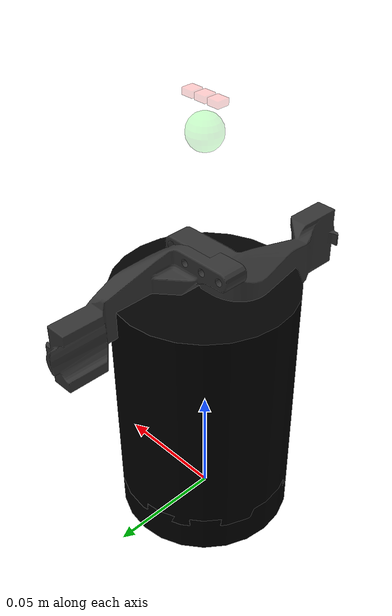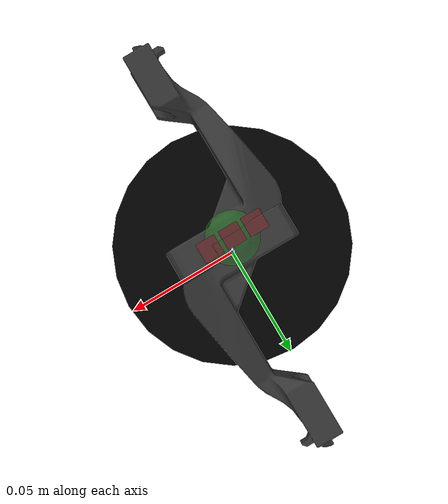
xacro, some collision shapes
<?xml version="1.0"?>

<robot xmlns:xacro="http://wiki.ros.org/xacro" name="robotiq_hande">
  <xacro:arg name="name" default="RobotiqGripperHandeHardwareInterface"/>
  <xacro:arg name="tf_prefix" default="" />
  <xacro:arg name="use_fake_hardware" default="false" />
  <xacro:arg name="com_port" default="/dev/ttyACM0" />
  <xacro:arg name="finger_xacro" default="fngr_v6" />
  <xacro:arg name="marker_opacity" default="0.1" />

  <xacro:property name="finger_type_prop" value="$(arg finger_xacro)" />

  <xacro:include filename="$(find dextivr_hande_description)/urdf/dextivr_hande.xacro"/>

  <link name="world"/>

  <xacro:dextivr_hande
    name="$(arg name)"
    tf_prefix="$(arg tf_prefix)"
    parent="world"
    use_fake_hardware="$(arg use_fake_hardware)"
    com_port="$(arg com_port)"
    finger_xacro="$(arg finger_xacro)"
    marker_opacity="$(arg marker_opacity)">
    <origin xyz="0 0 0" rpy="0 0 0"/>
  </xacro:dextivr_hande>

</robot>

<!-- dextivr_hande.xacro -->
<robot xmlns:xacro="http://wiki.ros.org/xacro">

  <xacro:macro name="dextivr_hande" params="
    name:=RobotiqGripperHandeHardwareInterface
    tf_prefix
    parent
    *origin
    sim_ignition:=false
    use_fake_hardware:=false
    fake_sensor_commands:=false
    com_port:=/dev/ttyUSB0
    marker_opacity:=0.5
    finger_xacro:=fngr_v6
    custom_xacro_include_path:=''
    custom_xacro_frames_include_path:=''
    add_grasp_push_frames:=true
    generate_ros2_control_tag:=true">

  <!-- if ignition or gazebo - need to use absolute paths instead of relative, applies locally -->
  <xacro:property name="force_abs_paths" value="${sim_ignition}" />

  <xacro:include filename="$(find robotiq_hande_description)/urdf/robotiq_hande.xacro"/>
  <xacro:include filename="$(find robotiq_hande_description)/urdf/gen_mesh.xacro"/>

  <xacro:robotiq_hande
    name="${name}"
    tf_prefix="${tf_prefix}"
    parent="${parent}"
    sim_ignition="${sim_ignition}"
    use_fake_hardware="${use_fake_hardware}"
    com_port="${com_port}"
    generate_ros2_control_tag="${generate_ros2_control_tag}">
    <xacro:insert_block name="origin"/>
  </xacro:robotiq_hande>

  <!--If statements for the various types of gripper fingers-->
  <xacro:if value="${finger_xacro == 'fngr_original'}">
    <xacro:include filename="$(find robotiq_hande_description)/urdf/hande_fingers.xacro"/>
    <xacro:if value="${add_grasp_push_frames}">
      <xacro:include filename="$(find robotiq_hande_description)/urdf/grasp_push_frames.xacro"/>
     </xacro:if>
  </xacro:if>

  <xacro:if value="${finger_xacro == 'fngr_nail_v2'}">
    <xacro:include filename="$(find dextivr_hande_description)/urdf/hande_fingers_fngr_nail_v2.xacro"/>
    <xacro:if value="${add_grasp_push_frames}">
      <xacro:include filename="$(find dextivr_hande_description)/urdf/fngr_nail_v2_grasp_push_frames.xacro"/>
    </xacro:if>
  </xacro:if>

  <xacro:if value="${finger_xacro == 'fngr_v2_m'}">
    <xacro:include filename="$(find dextivr_hande_description)/urdf/hande_fingers_v2_m.xacro"/>
    <xacro:if value="${add_grasp_push_frames}">
      <xacro:include filename="$(find dextivr_hande_description)/urdf/fngr_v2_m_grasp_push_frames.xacro"/>
    </xacro:if>
  </xacro:if>

  <xacro:if value="${finger_xacro == 'fngr_v6'}">
    <xacro:include filename="$(find dextivr_hande_description)/urdf/hande_fingers_v6.xacro"/>
    <xacro:if value="${add_grasp_push_frames}">
      <xacro:include filename="$(find dextivr_hande_description)/urdf/fngr_v2_m_grasp_push_frames.xacro"/>
    </xacro:if>
  </xacro:if>

  <xacro:if value="${finger_xacro == 'fngr_v7'}">
    <xacro:include filename="$(find dextivr_hande_description)/urdf/hande_fingers_v7.xacro"/>
    <xacro:if value="${add_grasp_push_frames}">
      <xacro:include filename="$(find dextivr_hande_description)/urdf/fngr_v2_m_grasp_push_frames.xacro"/>
    </xacro:if>
  </xacro:if>

  <xacro:if value="${finger_xacro == 'custom'}">
    <!--
      Validate that `custom_xacro_include_path` is non-empty.
      Note that these "errors" are actually invalid syntax, but they still give the user useful signal for debugging.
    -->
    <xacro:if value="${custom_xacro_include_path == ''}">
      <xacro:property name="validated_custom_xacro_include_path"
                      value="${raise(ValueError('ERROR: custom_xacro_include_path argument must be specified if using custom fingers!'))}" />
    </xacro:if>
    <xacro:unless value="${custom_xacro_include_path == ''}">
      <xacro:property name="validated_custom_xacro_include_path" value="${custom_xacro_include_path}" />
    </xacro:unless>
    <xacro:include filename="${validated_custom_xacro_include_path}"/>

    <xacro:if value="${add_grasp_push_frames}">
      <xacro:if value="${custom_xacro_frames_include_path == ''}">
        <xacro:property name="validated_custom_xacro_frames_include_path"
                        value="${raise ValueError('ERROR: custom_xacro_frames_include_path argument must be specified if using custom fingers and adding grasp frames!'))}" />
      </xacro:if>
      <xacro:unless value="${custom_xacro_frames_include_path == ''}">
        <xacro:property name="validated_custom_xacro_frames_include_path" value="${custom_xacro_frames_include_path}" />
      </xacro:unless>
      <xacro:include filename="${validated_custom_xacro_frames_include_path}"/>
    </xacro:if>
  </xacro:if>

  <!--Run the xacros from the files included above-->
  <xacro:hande_fingers name="${name}" tf_prefix="${tf_prefix}" />
  <xacro:if value="${add_grasp_push_frames}">
    <xacro:grasp_push_frames name="${name}" tf_prefix="${tf_prefix}" marker_opacity="${marker_opacity}"/>
  </xacro:if>

  </xacro:macro>
  <xacro:macro name="hande_gripper_base_link_mujoco_collision_mesh" params="
    tf_prefix=''
  ">
    <replace_collision link="${tf_prefix}gripper_base_link" stage="urdf">
      <collision>
        <geometry>
          <mesh filename="package://robotiq_hande_description/meshes/visual/hande.dae" scale="0.001 0.001 0.001"/>
        </geometry>
      </collision>
    </replace_collision>
  </xacro:macro>
</robot>

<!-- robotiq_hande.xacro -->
<robot xmlns:xacro="http://ros.org/wiki/xacro">
  <xacro:arg name="use_fake_hardware" default="false"/>

  <xacro:include filename="$(find robotiq_hande_description)/urdf/robotiq_hande.ros2_control.xacro"/>
  <xacro:include filename="$(find robotiq_hande_description)/urdf/gen_mesh.xacro"/>

  <xacro:macro name="robotiq_hande" params="
    name
    tf_prefix
    parent
    *origin
    sim_ignition:=false
    use_fake_hardware:=false
    fake_sensor_commands:=false
    com_port:=/dev/ttyUSB1
    generate_ros2_control_tag:=true">

    <material name="${tf_prefix}dark_gray">
      <color rgba="0.2 0.2 0.2 1"/>
    </material>

    <material name="${tf_prefix}black">
      <color rgba="0 0 0 1"/>
    </material>

    <!-- if ignition or gazebo - need to use absolute paths instead of relative, applies locally -->
    <xacro:property name="force_abs_paths" value="${sim_ignition}" />

    <!-- ros2 control instance -->
    <xacro:if value="${generate_ros2_control_tag}">
      <xacro:robotiq_hande_ros2_control
        name="${name}"
        tf_prefix="${tf_prefix}"
        sim_ignition="${sim_ignition}"
        use_fake_hardware="${use_fake_hardware}"
        fake_sensor_commands="${fake_sensor_commands}"
        com_port="${com_port}" />
    </xacro:if>

    <joint name="${tf_prefix}gripper_adapter_joint" type="fixed">
      <parent link="${parent}"/>
      <child link="${tf_prefix}robotiq_hande_cb_adapter"/>
      <xacro:insert_block name="origin"/>
    </joint>

    <link name="${tf_prefix}robotiq_hande_cb_adapter">
      <!--Not sure if these are right, based on the robotiq numbers for ur_to_robotiq_link-->
      <!-- Mass is estimated. Combined mass of ur_realsense_mount and robotiq_hande_adapter is 269.5 g -->
      <inertial>
        <mass value="0.2174" />
        <origin xyz="-1.9561273e-04  1.6716577e-03  5.1888253e-03" />
        <inertia ixx="4.1495874e-05" ixy="-3.5226788e-08" ixz="6.5573497e-09" iyy="5.2040925e-05" iyz="4.7369283e-07" izz="9.0288619e-05" />
      </inertial>
      <origin xyz="0 0 0" rpy="0 0 0" />
      <visual>
        <geometry>
          <xacro:gen_mesh
            force_abs_path="${force_abs_paths}"
            pkg_name="robotiq_hande_description"
            file_path="meshes/visual/robotiq_hande_cb_adapter.dae" />
        </geometry>
        <material name="${tf_prefix}black"/>
      </visual>
      <collision>
        <origin xyz="0 0 0.006" rpy="0 0 0" />
        <geometry>
          <cylinder length="0.018" radius="0.038"/>
        </geometry>
        <material name="${tf_prefix}black"/>
      </collision>
    </link>

    <joint name="${tf_prefix}gripper_base_joint" type="fixed">
      <parent link="${tf_prefix}robotiq_hande_cb_adapter"/>
      <child link="${tf_prefix}gripper_base_link"/>
      <origin xyz="0.0 0.0 0.011" rpy="0 0 0"/>
    </joint>

    <link name="${tf_prefix}gripper_base_link">
      <!-- Updated mass including finger attachment points -->
      <inertial>
        <origin xyz="0 0 4.8470158e-02" rpy="0 0 0" />
        <mass value="0.901" />
        <inertia ixx="1.1281390e-03" ixy="0" ixz="0" iyy="1.1556521e-03" iyz="0" izz="5.3230056e-04" />
      </inertial>
      <visual>
        <origin xyz="0 0 0" rpy="0 0 0" />
        <geometry>
          <xacro:gen_mesh
            force_abs_path="${force_abs_paths}"
            pkg_name="robotiq_hande_description"
            file_path="meshes/visual/hande.dae"
            scale="0.001 0.001 0.001"/>
        </geometry>
        <material name="${tf_prefix}black"/>
      </visual>
      <collision>
        <origin xyz="0 0 0.050" rpy="0 0 0" />
        <geometry>
          <cylinder length="0.10" radius="0.038"/>
        </geometry>
        <material name="${tf_prefix}black"/>
      </collision>
    </link>

    <joint name="${tf_prefix}gripper_palm_joint" type="fixed">
      <parent link="${tf_prefix}gripper_base_link"/>
      <child link="${tf_prefix}gripper_palm_link"/>
      <origin xyz="0.0 0.0 0.0988" rpy="0 0 0"/>
    </joint>

    <link name="${tf_prefix}gripper_palm_link"/>

  </xacro:macro>
</robot>

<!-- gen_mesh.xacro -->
<robot xmlns:xacro="http://wiki.ros.org/xacro">

  <xacro:macro name="gen_mesh" params="force_abs_path pkg_name file_path scale:='1 1 1'" >
    <xacro:if value="${force_abs_path}">
      <xacro:property name="mesh" value="file://$(find ${pkg_name})/${file_path}" scope="parent" />
    </xacro:if>
    <xacro:unless value="${force_abs_path}">
      <xacro:property name="mesh" value="package://${pkg_name}/${file_path}" scope="parent" />
    </xacro:unless>
    <mesh filename="${mesh}" scale="${scale}"/>
  </xacro:macro>

</robot>

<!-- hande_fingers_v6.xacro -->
<robot xmlns:xacro="http://ros.org/wiki/xacro">

  <!--Scaled from mm to m-->
  <xacro:macro name="hande_fingers" params="
    name:=''
    tf_prefix:=''
    mount_x:=${2.01401 * 0.001}
    mount_y:=${-3.25000 * 0.001}
    mount_z:=${100.500 * 0.001}
    mount_roll:=${radians(0)}
    mount_pitch:=${radians(0)}
    mount_yaw:=${radians(0)}
    scale:=0.001">

    <material name="${tf_prefix}hande_fingers_v6_dark_gray">
      <color rgba="0.2 0.2 0.2 1"/>
    </material>

    <link name="${tf_prefix}finger_1_link">
      <!--TODO set proper inertia-->
      <inertial>
        <origin rpy="0 0 0" xyz="0.0 0.0 0.0"/>
        <mass value="0.0"/>
        <inertia ixx="0.0" ixy="0.0" ixz="0.0" iyy="0.0" iyz="0.0" izz="0.0"/>
      </inertial>
      <visual>
          <origin xyz="0.0 0.0 0.0" rpy="0 0 0"/>
          <geometry>
            <mesh filename="package://dextivr_hande_description/meshes/visual/finger_v6.stl" />
          </geometry>
          <material name="${tf_prefix}hande_fingers_v6_dark_gray"/>
      </visual>
      <collision>
          <origin xyz="0.0 0.0 0.0" rpy="0 0 0"/>
          <geometry>
            <mesh filename="package://dextivr_hande_description/meshes/collision/finger_v6.stl"/>
          </geometry>
          <material name="${tf_prefix}hande_fingers_v6_dark_gray"/>
      </collision>
    </link>

    <link name="${tf_prefix}finger_2_link">
      <!--TODO set proper inertia-->
      <inertial>
        <origin rpy="0 0 0" xyz="0.0 0.0 0.0"/>
        <mass value="0.0"/>
        <inertia ixx="0.0" ixy="0.0" ixz="0.0" iyy="0.0" iyz="0.0" izz="0.0"/>
      </inertial>
      <visual>
          <origin xyz="0.0 0.0 0.0" rpy="0 0 0"/>
          <geometry>
            <mesh filename="package://dextivr_hande_description/meshes/visual/finger_v6.stl" />
          </geometry>
          <material name="${tf_prefix}hande_fingers_v6_dark_gray"/>
      </visual>
      <collision>
          <origin xyz="0.0 0.0 0.0" rpy="0 0 0"/>
          <geometry>
            <mesh filename="package://dextivr_hande_description/meshes/collision/finger_v6.stl"/>
          </geometry>
          <material name="${tf_prefix}hande_fingers_v6_dark_gray"/>
      </collision>
    </link>

    <joint name="${tf_prefix}finger_1_joint" type="prismatic">
      <origin rpy="${mount_roll} ${mount_pitch} ${mount_yaw}" xyz="${mount_x} ${mount_y} ${mount_z}"/>
      <parent link="${tf_prefix}gripper_base_link"/>
      <child link="${tf_prefix}finger_1_link"/>
      <axis xyz="1 0 0"/>
      <limit effort="130" lower="0" upper="0.025" velocity="0.15"/>
    </joint>

    <joint name="${tf_prefix}finger_2_joint" type="prismatic">
      <origin rpy="${mount_roll} ${mount_pitch} ${mount_yaw + pi}" xyz="${-mount_x} ${-mount_y} ${mount_z}"/>
      <parent link="${tf_prefix}gripper_base_link"/>
      <child link="${tf_prefix}finger_2_link"/>
      <axis xyz="1 0 0"/>
      <limit effort="130" lower="0" upper="0.025" velocity="0.15"/>
      <mimic joint="${tf_prefix}finger_1_joint" multiplier="1" offset="0"/>
    </joint>

  </xacro:macro>
</robot>

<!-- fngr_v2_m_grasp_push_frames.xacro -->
<robot xmlns:xacro="http://ros.org/wiki/xacro">

  <xacro:macro name="grasp_push_frames" params="
    name:=''
    tf_prefix:=''
    marker_opacity:=0.25
    grasp_distance:=${(170.350-8)/1000.0}
    finger_length:=0.0730250
    push_marker_size:=0.005">

    <material name="${tf_prefix}fngr_v2_m_grasp_push_frames_red_marker">
      <color rgba="1.0 0 0 ${marker_opacity}"/>
    </material>

    <material name="${tf_prefix}fngr_v2_m_grasp_push_frames_green_marker">
      <color rgba="0 1.0 0 ${marker_opacity}"/>
    </material>

    <link name="${tf_prefix}grasp_frame">
      <visual>
        <geometry>
          <sphere radius="0.007"/>
        </geometry>
        <material name="${tf_prefix}fngr_v2_m_grasp_push_frames_green_marker"/>
      </visual>
    </link>

    <joint name="${tf_prefix}grasp_frame_joint" type="fixed">
      <parent link="${tf_prefix}gripper_base_link"/>
      <child link="${tf_prefix}grasp_frame"/>
      <origin xyz="0.0 0.0 ${grasp_distance}" rpy="0 0 0"/>
    </joint>

    <link name="${tf_prefix}push_frame_1">
      <visual>
        <origin xyz="0.0 0.0 ${push_marker_size / 4}" rpy="0 0 0"/>
        <geometry>
          <box size="${push_marker_size} ${push_marker_size} ${push_marker_size / 2}"/>
        </geometry>
        <material name="${tf_prefix}fngr_v2_m_grasp_push_frames_red_marker"/>
      </visual>
    </link>

    <joint name="${tf_prefix}push_frame_1_joint" type="fixed">
      <parent link="${tf_prefix}finger_1_link"/>
      <child link="${tf_prefix}push_frame_1"/>
      <origin xyz="0.0041 0.00325 ${finger_length}" rpy="0 0 0"/>
    </joint>

    <link name="${tf_prefix}push_frame_2">
      <visual>
        <origin xyz="0.0 0.0 ${push_marker_size / 4}" rpy="0 0 0"/>
        <geometry>
          <box size="${push_marker_size} ${push_marker_size} ${push_marker_size / 2}"/>
        </geometry>
        <material name="${tf_prefix}fngr_v2_m_grasp_push_frames_red_marker"/>
      </visual>
    </link>

    <joint name="${tf_prefix}push_frame_2_joint" type="fixed">
      <parent link="${tf_prefix}finger_2_link"/>
      <child link="${tf_prefix}push_frame_2"/>
      <origin xyz="0.0041 0.00325 ${finger_length}" rpy="0 0 ${pi}"/>
    </joint>

    <link name="${tf_prefix}center_push_frame">
      <visual>
        <origin xyz="0.0 0.0 ${push_marker_size / 4}" rpy="0 0 0"/>
        <geometry>
          <box size="${push_marker_size} ${push_marker_size} ${push_marker_size / 2}"/>
        </geometry>
        <material name="${tf_prefix}fngr_v2_m_grasp_push_frames_red_marker"/>
      </visual>
    </link>

    <!-- The 0.01 is for the finger mount offset -->
    <joint name="${tf_prefix}center_push_frame_joint" type="fixed">
      <parent link="${tf_prefix}gripper_palm_link"/>
      <child link="${tf_prefix}center_push_frame"/>
      <origin xyz="0.0 0.0 ${finger_length + 0.0017}" rpy="0 0 0"/>
    </joint>

  </xacro:macro>
</robot>
